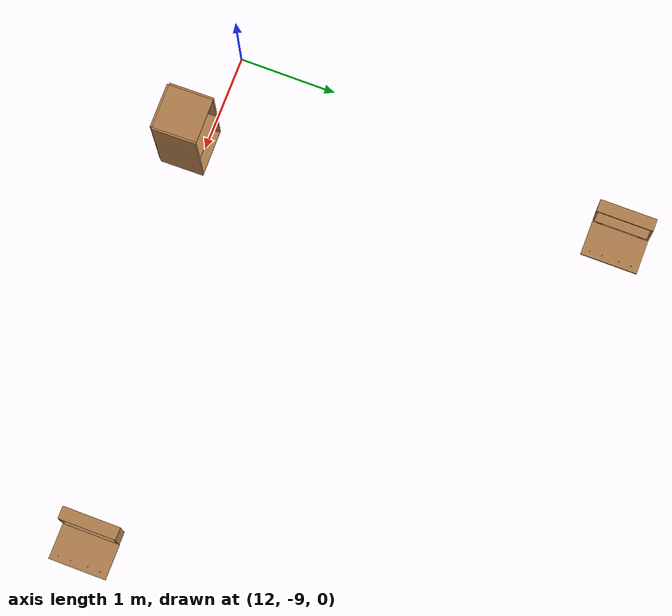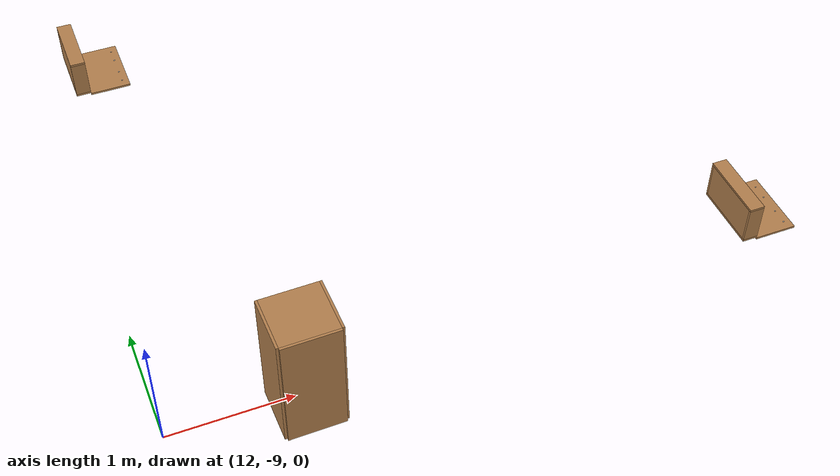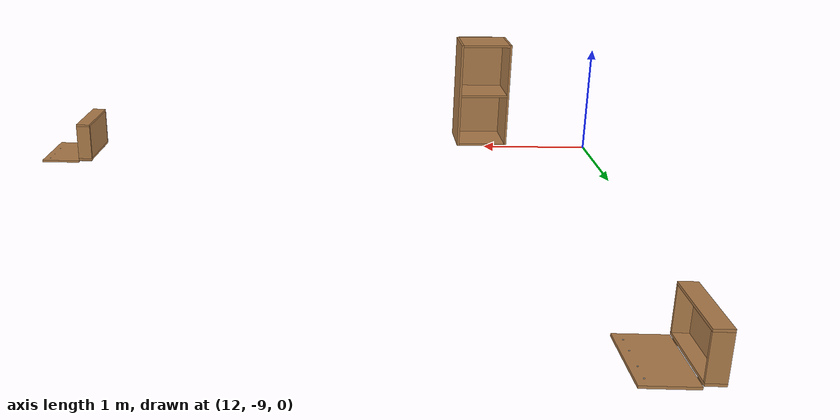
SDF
<sdf version="1.7">
 <world name="factory">
  <model name="cabinet">
   <static>1</static>
   <link name="cabinet_bottom_plate">
    <inertial>
     <pose>0 0 -1 0 -0 0</pose>
     <inertia><ixx>2.05</ixx><ixy>0</ixy><ixz>0</ixz><iyy>2.05</iyy><iyz>0</iyz><izz>2.05</izz></inertia>
     <mass>25</mass>
    </inertial>
    <collision name="cabinet_bottom_plate_geom">
     <pose>0 0 0.01 0 -0 0</pose>
     <geometry><box><size>0.45 0.45 0.02</size></box></geometry>
    </collision>
    <visual name="cabinet_bottom_plate_geom_visual">
     <pose>0 0 0.01 0 -0 0</pose>
     <geometry><box><size>0.45 0.45 0.02</size></box></geometry>
     <material>
      <script><uri>file://media/materials/scripts/gazebo.material</uri><name>Gazebo/Wood</name></script>
     </material>
    </visual>
    <collision name="cabinet_bottom_plate_geom_cabinet_back_plate">
     <pose>0.235 0 0.51 0 -0 0</pose>
     <geometry><box><size>0.02 0.45 1.02</size></box></geometry>
    </collision>
    <visual name="cabinet_bottom_plate_geom_cabinet_back_plate_visual">
     <pose>0.235 0 0.51 0 -0 0</pose>
     <geometry><box><size>0.02 0.45 1.02</size></box></geometry>
     <material>
      <script><uri>file://media/materials/scripts/gazebo.material</uri><name>Gazebo/Wood</name></script>
     </material>
    </visual>
    <collision name="cabinet_bottom_plate_geom_cabinet_left_plate">
     <pose>0 0.235 0.51 0 -0 0</pose>
     <geometry><box><size>0.45 0.02 1.02</size></box></geometry>
    </collision>
    <visual name="cabinet_bottom_plate_geom_cabinet_left_plate_visual">
     <pose>0 0.235 0.51 0 -0 0</pose>
     <geometry><box><size>0.45 0.02 1.02</size></box></geometry>
     <material>
      <script><uri>file://media/materials/scripts/gazebo.material</uri><name>Gazebo/Wood</name></script>
     </material>
    </visual>
    <collision name="cabinet_bottom_plate_geom_cabinet_middle_plate">
     <pose>0 0 0.51 0 -0 0</pose>
     <geometry><box><size>0.45 0.45 0.02</size></box></geometry>
    </collision>
    <visual name="cabinet_bottom_plate_geom_cabinet_middle_plate_visual">
     <pose>0 0 0.51 0 -0 0</pose>
     <geometry><box><size>0.45 0.45 0.02</size></box></geometry>
     <material>
      <script><uri>file://media/materials/scripts/gazebo.material</uri><name>Gazebo/Wood</name></script>
     </material>
    </visual>
    <collision name="cabinet_bottom_plate_geom_cabinet_right_plate">
     <pose>0 -0.235 0.51 0 -0 0</pose>
     <geometry><box><size>0.45 0.02 1.02</size></box></geometry>
    </collision>
    <visual name="cabinet_bottom_plate_geom_cabinet_right_plate_visual">
     <pose>0 -0.235 0.51 0 -0 0</pose>
     <geometry><box><size>0.45 0.02 1.02</size></box></geometry>
     <material>
      <script><uri>file://media/materials/scripts/gazebo.material</uri><name>Gazebo/Wood</name></script>
     </material>
    </visual>
    <collision name="cabinet_bottom_plate_geom_cabinet_top_plate">
     <pose>0 0 1.01 0 -0 0</pose>
     <geometry><box><size>0.45 0.45 0.02</size></box></geometry>
    </collision>
    <visual name="cabinet_bottom_plate_geom_cabinet_top_plate_visual">
     <pose>0 0 1.01 0 -0 0</pose>
     <geometry><box><size>0.45 0.45 0.02</size></box></geometry>
     <material>
      <script><uri>file://media/materials/scripts/gazebo.material</uri><name>Gazebo/Wood</name></script>
     </material>
    </visual>
   </link>
   <pose>13.0394 -9.13497 0.037072 0 0 -1.55676</pose>
  </model>
  <model name="wooden_case">
   <link name="base">
    <pose>0 0 0.024 0 -0 0</pose>
    <inertial>
     <pose>-0.022184 0 0.171592 0 -0 0</pose>
     <mass>3.96264</mass>
     <inertia>
      <ixx>0.213536</ixx>
      <ixy>0</ixy>
      <ixz>0.000779377</ixz>
      <iyy>0.0708943</iyy>
      <iyz>0</iyz>
      <izz>0.154604</izz>
     </inertia>
    </inertial>
    <collision name="collision_back">
     <pose>-0.053975 0 0.1778 0 -0 0</pose>
     <geometry><box><size>0.01905 0.5461 0.3175</size></box></geometry>
     <surface>
      <contact>
       <poissons_ratio>0.347</poissons_ratio>
       <elastic_modulus>8.8e+09</elastic_modulus>
       <ode><kp>100000</kp><kd>100</kd><max_vel>100</max_vel><min_depth>0.001</min_depth></ode>
      </contact>
      <friction>
       <torsional>
        <coefficient>1</coefficient>
        <use_patch_radius>0</use_patch_radius>
        <surface_radius>0.01</surface_radius>
       </torsional>
      </friction>
     </surface>
    </collision>
    <visual name="visual_back">
     <pose>-0.053975 0 0.1778 0 -0 0</pose>
     <geometry><box><size>0.01905 0.5461 0.3175</size></box></geometry>
     <material>
      <script><uri>file://media/materials/scripts/gazebo.material</uri><name>Gazebo/Wood</name></script>
     </material>
    </visual>
    <collision name="collision_bottom">
     <pose>0 0 0.009525 0 -0 0</pose>
     <geometry><box><size>0.127 0.5842 0.01905</size></box></geometry>
     <surface>
      <contact>
       <poissons_ratio>0.347</poissons_ratio>
       <elastic_modulus>8.8e+09</elastic_modulus>
       <ode><kp>100000</kp><kd>100</kd><max_vel>100</max_vel><min_depth>0.001</min_depth></ode>
      </contact>
      <friction>
       <torsional>
        <coefficient>1</coefficient>
        <use_patch_radius>0</use_patch_radius>
        <surface_radius>0.01</surface_radius>
       </torsional>
      </friction>
     </surface>
    </collision>
    <visual name="visual_bottom">
     <pose>0 0 0.009525 0 -0 0</pose>
     <geometry><box><size>0.127 0.5842 0.01905</size></box></geometry>
     <material>
      <script><uri>file://media/materials/scripts/gazebo.material</uri><name>Gazebo/Wood</name></script>
     </material>
    </visual>
    <collision name="collision_top">
     <pose>0 0 0.346075 0 -0 0</pose>
     <geometry><box><size>0.127 0.5842 0.01905</size></box></geometry>
     <surface>
      <contact>
       <poissons_ratio>0.347</poissons_ratio>
       <elastic_modulus>8.8e+09</elastic_modulus>
       <ode><kp>100000</kp><kd>100</kd><max_vel>100</max_vel><min_depth>0.001</min_depth></ode>
      </contact>
      <friction>
       <torsional>
        <coefficient>1</coefficient>
        <use_patch_radius>0</use_patch_radius>
        <surface_radius>0.01</surface_radius>
       </torsional>
      </friction>
     </surface>
    </collision>
    <visual name="visual_top">
     <pose>0 0 0.346075 0 -0 0</pose>
     <geometry><box><size>0.127 0.5842 0.01905</size></box></geometry>
     <material>
      <script><uri>file://media/materials/scripts/gazebo.material</uri><name>Gazebo/Wood</name></script>
     </material>
    </visual>
    <collision name="collision_left">
     <pose>0 -0.282575 0.1778 0 -0 0</pose>
     <geometry><box><size>0.127 0.01905 0.3175</size></box></geometry>
     <surface>
      <contact>
       <poissons_ratio>0.347</poissons_ratio>
       <elastic_modulus>8.8e+09</elastic_modulus>
       <ode><kp>100000</kp><kd>100</kd><max_vel>100</max_vel><min_depth>0.001</min_depth></ode>
      </contact>
      <friction>
       <torsional>
        <coefficient>1</coefficient>
        <use_patch_radius>0</use_patch_radius>
        <surface_radius>0.01</surface_radius>
       </torsional>
      </friction>
     </surface>
    </collision>
    <visual name="visual_left">
     <pose>0 -0.282575 0.1778 0 -0 0</pose>
     <geometry><box><size>0.127 0.01905 0.3175</size></box></geometry>
     <material>
      <script><uri>file://media/materials/scripts/gazebo.material</uri><name>Gazebo/Wood</name></script>
     </material>
    </visual>
    <collision name="collision_right">
     <pose>0 0.282575 0.1778 0 -0 0</pose>
     <geometry><box><size>0.127 0.01905 0.3175</size></box></geometry>
     <surface>
      <contact>
       <poissons_ratio>0.347</poissons_ratio>
       <elastic_modulus>8.8e+09</elastic_modulus>
       <ode><kp>100000</kp><kd>100</kd><max_vel>100</max_vel><min_depth>0.001</min_depth></ode>
      </contact>
      <friction>
       <torsional>
        <coefficient>1</coefficient>
        <use_patch_radius>0</use_patch_radius>
        <surface_radius>0.01</surface_radius>
       </torsional>
      </friction>
     </surface>
    </collision>
    <visual name="visual_right">
     <pose>0 0.282575 0.1778 0 -0 0</pose>
     <geometry><box><size>0.127 0.01905 0.3175</size></box></geometry>
     <material>
      <script><uri>file://media/materials/scripts/gazebo.material</uri><name>Gazebo/Wood</name></script>
     </material>
    </visual>
    <collision name="collision_block_left">
     <pose>0.0095 -0.2151 -0.012 0 -0 0</pose>
     <geometry><box><size>0.108 0.05 0.024</size></box></geometry>
     <surface>
      <contact>
       <poissons_ratio>0.347</poissons_ratio>
       <elastic_modulus>8.8e+09</elastic_modulus>
       <ode><kp>100000</kp><kd>100</kd><max_vel>100</max_vel><min_depth>0.001</min_depth></ode>
      </contact>
      <friction>
       <torsional>
        <coefficient>1</coefficient>
        <use_patch_radius>0</use_patch_radius>
        <surface_radius>0.01</surface_radius>
       </torsional>
      </friction>
     </surface>
    </collision>
    <visual name="visual_block_left">
     <pose>0.0095 -0.2151 -0.012 0 -0 0</pose>
     <geometry><box><size>0.108 0.05 0.024</size></box></geometry>
     <material>
      <script><uri>file://media/materials/scripts/gazebo.material</uri><name>Gazebo/Wood</name></script>
     </material>
    </visual>
    <collision name="collision_block_right">
     <pose>0.0095 0.2151 -0.012 0 -0 0</pose>
     <geometry><box><size>0.108 0.05 0.024</size></box></geometry>
     <surface>
      <contact>
       <poissons_ratio>0.347</poissons_ratio>
       <elastic_modulus>8.8e+09</elastic_modulus>
       <ode><kp>100000</kp><kd>100</kd><max_vel>100</max_vel><min_depth>0.001</min_depth></ode>
      </contact>
      <friction>
       <torsional>
        <coefficient>1</coefficient>
        <use_patch_radius>0</use_patch_radius>
        <surface_radius>0.01</surface_radius>
       </torsional>
      </friction>
     </surface>
    </collision>
    <visual name="visual_block_right">
     <pose>0.0095 0.2151 -0.012 0 -0 0</pose>
     <geometry><box><size>0.108 0.05 0.024</size></box></geometry>
     <material>
      <script><uri>file://media/materials/scripts/gazebo.material</uri><name>Gazebo/Wood</name></script>
     </material>
    </visual>
   </link>
   <link name="lid">
    <pose>0.243775 0 0.009525 0 -0 0</pose>
    <inertial>
     <mass>1.97874</mass>
     <inertia>
      <ixx>0.0563367</ixx>
      <ixy>0</ixy>
      <ixz>0</ixz>
      <iyy>0.020911</iyy>
      <iyz>0</iyz>
      <izz>0.0771281</izz>
     </inertia>
    </inertial>
    <collision name="collision">
     <geometry><box><size>0.3556 0.5842 0.01905</size></box></geometry>
     <surface>
      <contact>
       <poissons_ratio>0.347</poissons_ratio>
       <elastic_modulus>8.8e+09</elastic_modulus>
       <ode><kp>100000</kp><kd>100</kd><max_vel>100</max_vel><min_depth>0.001</min_depth></ode>
      </contact>
      <friction>
       <torsional>
        <coefficient>1</coefficient>
        <use_patch_radius>0</use_patch_radius>
        <surface_radius>0.01</surface_radius>
       </torsional>
      </friction>
     </surface>
    </collision>
    <visual name="visual">
     <geometry><box><size>0.3556 0.5842 0.01905</size></box></geometry>
     <material>
      <script><uri>file://media/materials/scripts/gazebo.material</uri><name>Gazebo/Wood</name></script>
     </material>
    </visual>
    <visual name="tee_nut_1">
     <pose>0.122 -0.216 0 0 -0 0</pose>
     <geometry><cylinder><radius>0.00635</radius><length>0.0192405</length></cylinder></geometry>
     <material>
      <script><uri>file://media/materials/scripts/gazebo.material</uri><name>Gazebo/Grey</name></script>
     </material>
    </visual>
    <visual name="tee_nut_2">
     <pose>0.122 -0.088 0 0 -0 0</pose>
     <geometry><cylinder><radius>0.00635</radius><length>0.0192405</length></cylinder></geometry>
     <material>
      <script><uri>file://media/materials/scripts/gazebo.material</uri><name>Gazebo/Grey</name></script>
     </material>
    </visual>
    <visual name="tee_nut_3">
     <pose>0.122 0.088 0 0 -0 0</pose>
     <geometry><cylinder><radius>0.00635</radius><length>0.0192405</length></cylinder></geometry>
     <material>
      <script><uri>file://media/materials/scripts/gazebo.material</uri><name>Gazebo/Grey</name></script>
     </material>
    </visual>
    <visual name="tee_nut_4">
     <pose>0.122 0.216 0 0 -0 0</pose>
     <geometry><cylinder><radius>0.00635</radius><length>0.0192405</length></cylinder></geometry>
     <material>
      <script><uri>file://media/materials/scripts/gazebo.material</uri><name>Gazebo/Grey</name></script>
     </material>
    </visual>
   </link>
   <joint name="lid_hinge" type="revolute">
    <pose>-0.1778 0 0.01905 0 -0 0</pose>
    <parent>base</parent>
    <child>lid</child>
    <axis>
     <xyz>0 1 0</xyz>
     <limit><upper>0.523599</upper><lower>-1.5708</lower></limit>
     <dynamics><spring_reference>0</spring_reference><spring_stiffness>0</spring_stiffness></dynamics>
    </axis>
   </joint>
   <pose>16.9031 -8.59916 -0.001057 0 -0.000431 -0.000115</pose>
  </model>
  <model name="wooden_case_clone">
   <link name="base">
    <pose>0 0 0.024 0 -0 0</pose>
    <inertial>
     <pose>-0.022184 0 0.171592 0 -0 0</pose>
     <mass>3.96264</mass>
     <inertia>
      <ixx>0.213536</ixx>
      <ixy>0</ixy>
      <ixz>0.000779377</ixz>
      <iyy>0.0708943</iyy>
      <iyz>0</iyz>
      <izz>0.154604</izz>
     </inertia>
    </inertial>
    <collision name="collision_back">
     <pose>-0.053975 0 0.1778 0 -0 0</pose>
     <geometry><box><size>0.01905 0.5461 0.3175</size></box></geometry>
     <surface>
      <contact>
       <poissons_ratio>0.347</poissons_ratio>
       <elastic_modulus>8.8e+09</elastic_modulus>
       <ode><kp>100000</kp><kd>100</kd><max_vel>100</max_vel><min_depth>0.001</min_depth></ode>
      </contact>
      <friction>
       <torsional>
        <coefficient>1</coefficient>
        <use_patch_radius>0</use_patch_radius>
        <surface_radius>0.01</surface_radius>
       </torsional>
      </friction>
     </surface>
    </collision>
    <visual name="visual_back">
     <pose>-0.053975 0 0.1778 0 -0 0</pose>
     <geometry><box><size>0.01905 0.5461 0.3175</size></box></geometry>
     <material>
      <script><uri>file://media/materials/scripts/gazebo.material</uri><name>Gazebo/Wood</name></script>
     </material>
    </visual>
    <collision name="collision_bottom">
     <pose>0 0 0.009525 0 -0 0</pose>
     <geometry><box><size>0.127 0.5842 0.01905</size></box></geometry>
     <surface>
      <contact>
       <poissons_ratio>0.347</poissons_ratio>
       <elastic_modulus>8.8e+09</elastic_modulus>
       <ode><kp>100000</kp><kd>100</kd><max_vel>100</max_vel><min_depth>0.001</min_depth></ode>
      </contact>
      <friction>
       <torsional>
        <coefficient>1</coefficient>
        <use_patch_radius>0</use_patch_radius>
        <surface_radius>0.01</surface_radius>
       </torsional>
      </friction>
     </surface>
    </collision>
    <visual name="visual_bottom">
     <pose>0 0 0.009525 0 -0 0</pose>
     <geometry><box><size>0.127 0.5842 0.01905</size></box></geometry>
     <material>
      <script><uri>file://media/materials/scripts/gazebo.material</uri><name>Gazebo/Wood</name></script>
     </material>
    </visual>
    <collision name="collision_top">
     <pose>0 0 0.346075 0 -0 0</pose>
     <geometry><box><size>0.127 0.5842 0.01905</size></box></geometry>
     <surface>
      <contact>
       <poissons_ratio>0.347</poissons_ratio>
       <elastic_modulus>8.8e+09</elastic_modulus>
       <ode><kp>100000</kp><kd>100</kd><max_vel>100</max_vel><min_depth>0.001</min_depth></ode>
      </contact>
      <friction>
       <torsional>
        <coefficient>1</coefficient>
        <use_patch_radius>0</use_patch_radius>
        <surface_radius>0.01</surface_radius>
       </torsional>
      </friction>
     </surface>
    </collision>
    <visual name="visual_top">
     <pose>0 0 0.346075 0 -0 0</pose>
     <geometry><box><size>0.127 0.5842 0.01905</size></box></geometry>
     <material>
      <script><uri>file://media/materials/scripts/gazebo.material</uri><name>Gazebo/Wood</name></script>
     </material>
    </visual>
    <collision name="collision_left">
     <pose>0 -0.282575 0.1778 0 -0 0</pose>
     <geometry><box><size>0.127 0.01905 0.3175</size></box></geometry>
     <surface>
      <contact>
       <poissons_ratio>0.347</poissons_ratio>
       <elastic_modulus>8.8e+09</elastic_modulus>
       <ode><kp>100000</kp><kd>100</kd><max_vel>100</max_vel><min_depth>0.001</min_depth></ode>
      </contact>
      <friction>
       <torsional>
        <coefficient>1</coefficient>
        <use_patch_radius>0</use_patch_radius>
        <surface_radius>0.01</surface_radius>
       </torsional>
      </friction>
     </surface>
    </collision>
    <visual name="visual_left">
     <pose>0 -0.282575 0.1778 0 -0 0</pose>
     <geometry><box><size>0.127 0.01905 0.3175</size></box></geometry>
     <material>
      <script><uri>file://media/materials/scripts/gazebo.material</uri><name>Gazebo/Wood</name></script>
     </material>
    </visual>
    <collision name="collision_right">
     <pose>0 0.282575 0.1778 0 -0 0</pose>
     <geometry><box><size>0.127 0.01905 0.3175</size></box></geometry>
     <surface>
      <contact>
       <poissons_ratio>0.347</poissons_ratio>
       <elastic_modulus>8.8e+09</elastic_modulus>
       <ode><kp>100000</kp><kd>100</kd><max_vel>100</max_vel><min_depth>0.001</min_depth></ode>
      </contact>
      <friction>
       <torsional>
        <coefficient>1</coefficient>
        <use_patch_radius>0</use_patch_radius>
        <surface_radius>0.01</surface_radius>
       </torsional>
      </friction>
     </surface>
    </collision>
    <visual name="visual_right">
     <pose>0 0.282575 0.1778 0 -0 0</pose>
     <geometry><box><size>0.127 0.01905 0.3175</size></box></geometry>
     <material>
      <script><uri>file://media/materials/scripts/gazebo.material</uri><name>Gazebo/Wood</name></script>
     </material>
    </visual>
    <collision name="collision_block_left">
     <pose>0.0095 -0.2151 -0.012 0 -0 0</pose>
     <geometry><box><size>0.108 0.05 0.024</size></box></geometry>
     <surface>
      <contact>
       <poissons_ratio>0.347</poissons_ratio>
       <elastic_modulus>8.8e+09</elastic_modulus>
       <ode><kp>100000</kp><kd>100</kd><max_vel>100</max_vel><min_depth>0.001</min_depth></ode>
      </contact>
      <friction>
       <torsional>
        <coefficient>1</coefficient>
        <use_patch_radius>0</use_patch_radius>
        <surface_radius>0.01</surface_radius>
       </torsional>
      </friction>
     </surface>
    </collision>
    <visual name="visual_block_left">
     <pose>0.0095 -0.2151 -0.012 0 -0 0</pose>
     <geometry><box><size>0.108 0.05 0.024</size></box></geometry>
     <material>
      <script><uri>file://media/materials/scripts/gazebo.material</uri><name>Gazebo/Wood</name></script>
     </material>
    </visual>
    <collision name="collision_block_right">
     <pose>0.0095 0.2151 -0.012 0 -0 0</pose>
     <geometry><box><size>0.108 0.05 0.024</size></box></geometry>
     <surface>
      <contact>
       <poissons_ratio>0.347</poissons_ratio>
       <elastic_modulus>8.8e+09</elastic_modulus>
       <ode><kp>100000</kp><kd>100</kd><max_vel>100</max_vel><min_depth>0.001</min_depth></ode>
      </contact>
      <friction>
       <torsional>
        <coefficient>1</coefficient>
        <use_patch_radius>0</use_patch_radius>
        <surface_radius>0.01</surface_radius>
       </torsional>
      </friction>
     </surface>
    </collision>
    <visual name="visual_block_right">
     <pose>0.0095 0.2151 -0.012 0 -0 0</pose>
     <geometry><box><size>0.108 0.05 0.024</size></box></geometry>
     <material>
      <script><uri>file://media/materials/scripts/gazebo.material</uri><name>Gazebo/Wood</name></script>
     </material>
    </visual>
   </link>
   <link name="lid">
    <pose>0.243775 0 0.009525 0 -0 0</pose>
    <inertial>
     <mass>1.97874</mass>
     <inertia>
      <ixx>0.0563367</ixx>
      <ixy>0</ixy>
      <ixz>0</ixz>
      <iyy>0.020911</iyy>
      <iyz>0</iyz>
      <izz>0.0771281</izz>
     </inertia>
    </inertial>
    <collision name="collision">
     <geometry><box><size>0.3556 0.5842 0.01905</size></box></geometry>
     <surface>
      <contact>
       <poissons_ratio>0.347</poissons_ratio>
       <elastic_modulus>8.8e+09</elastic_modulus>
       <ode><kp>100000</kp><kd>100</kd><max_vel>100</max_vel><min_depth>0.001</min_depth></ode>
      </contact>
      <friction>
       <torsional>
        <coefficient>1</coefficient>
        <use_patch_radius>0</use_patch_radius>
        <surface_radius>0.01</surface_radius>
       </torsional>
      </friction>
     </surface>
    </collision>
    <visual name="visual">
     <geometry><box><size>0.3556 0.5842 0.01905</size></box></geometry>
     <material>
      <script><uri>file://media/materials/scripts/gazebo.material</uri><name>Gazebo/Wood</name></script>
     </material>
    </visual>
    <visual name="tee_nut_1">
     <pose>0.122 -0.216 0 0 -0 0</pose>
     <geometry><cylinder><radius>0.00635</radius><length>0.0192405</length></cylinder></geometry>
     <material>
      <script><uri>file://media/materials/scripts/gazebo.material</uri><name>Gazebo/Grey</name></script>
     </material>
    </visual>
    <visual name="tee_nut_2">
     <pose>0.122 -0.088 0 0 -0 0</pose>
     <geometry><cylinder><radius>0.00635</radius><length>0.0192405</length></cylinder></geometry>
     <material>
      <script><uri>file://media/materials/scripts/gazebo.material</uri><name>Gazebo/Grey</name></script>
     </material>
    </visual>
    <visual name="tee_nut_3">
     <pose>0.122 0.088 0 0 -0 0</pose>
     <geometry><cylinder><radius>0.00635</radius><length>0.0192405</length></cylinder></geometry>
     <material>
      <script><uri>file://media/materials/scripts/gazebo.material</uri><name>Gazebo/Grey</name></script>
     </material>
    </visual>
    <visual name="tee_nut_4">
     <pose>0.122 0.216 0 0 -0 0</pose>
     <geometry><cylinder><radius>0.00635</radius><length>0.0192405</length></cylinder></geometry>
     <material>
      <script><uri>file://media/materials/scripts/gazebo.material</uri><name>Gazebo/Grey</name></script>
     </material>
    </visual>
   </link>
   <joint name="lid_hinge" type="revolute">
    <pose>-0.1778 0 0.01905 0 -0 0</pose>
    <parent>base</parent>
    <child>lid</child>
    <axis>
     <xyz>0 1 0</xyz>
     <limit><upper>0.523599</upper><lower>-1.5708</lower></limit>
     <dynamics><spring_reference>0</spring_reference><spring_stiffness>0</spring_stiffness></dynamics>
    </axis>
   </joint>
   <pose>12.2927 -4.84304 -0.001057 0 -0.000431 0</pose>
  </model>
 </world>
</sdf>
